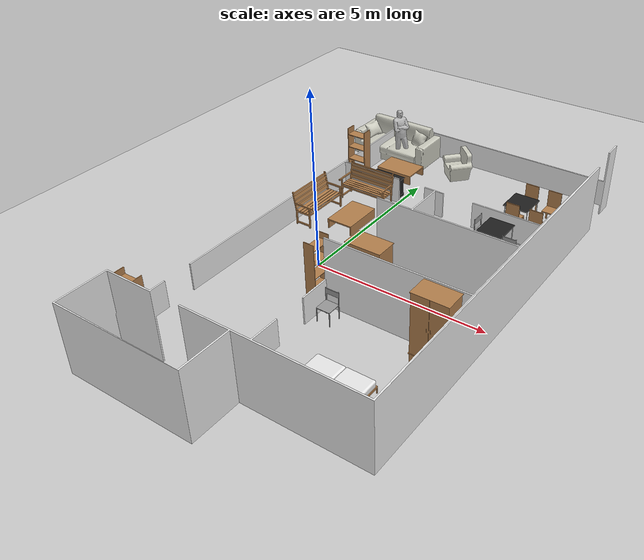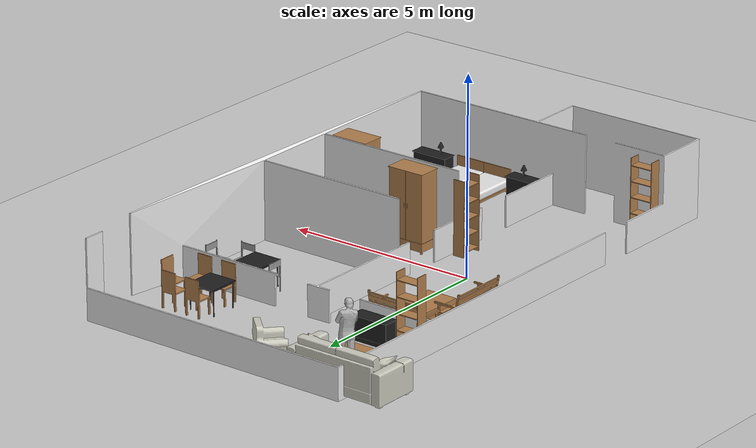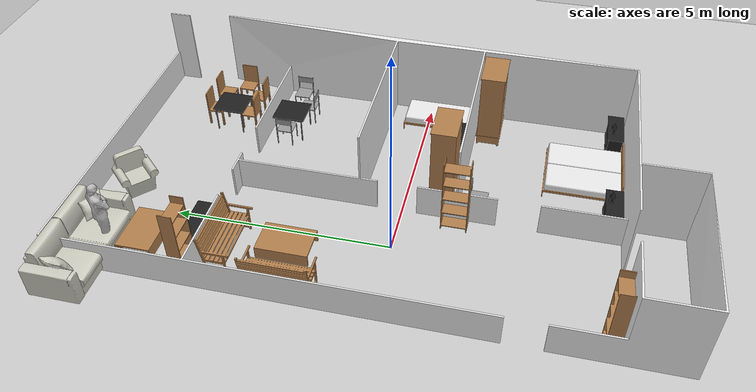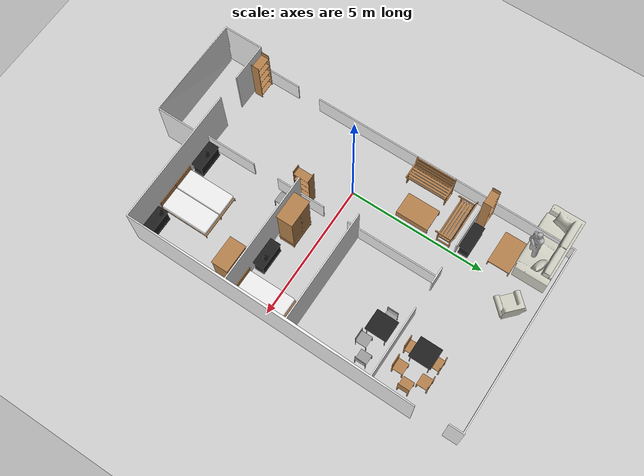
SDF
<sdf version="1.6">
 <world name="robocup">
  <physics name="default_physics" default="0" type="ode">
   <ode>
    <solver>
     <type>quick</type>
     <iters>20</iters>
     <sor>1</sor>
     <use_dynamic_moi_rescaling>0</use_dynamic_moi_rescaling>
    </solver>
    <constraints>
     <cfm>0</cfm>
     <erp>0.2</erp>
     <contact_max_correcting_vel>100</contact_max_correcting_vel>
     <contact_surface_layer>0</contact_surface_layer>
    </constraints>
   </ode>
   <real_time_update_rate>1000</real_time_update_rate>
   <max_step_size>0.001</max_step_size>
   <real_time_factor>1</real_time_factor>
  </physics>
  <light name="sun" type="directional">
   <pose>0 0 10 0 -0 0</pose>
   <diffuse>0.8 0.8 0.8 1</diffuse>
   <specular>0.1 0.1 0.1 1</specular>
   <attenuation>
    <range>1000</range>
    <constant>0.9</constant>
    <linear>0.01</linear>
    <quadratic>0.001</quadratic>
   </attenuation>
   <direction>-0.5 0.5 -1</direction>
  </light>
  <model name="ground_plane">
   <static>1</static>
   <link name="link">
    <collision name="collision">
     <geometry><plane><normal>0 0 1</normal><size>100 100</size></plane></geometry>
     <surface><friction><ode><mu>100</mu><mu2>50</mu2></ode></friction></surface>
    </collision>
    <visual name="visual">
     <cast_shadows>0</cast_shadows>
     <geometry><plane><normal>0 0 1</normal><size>100 100</size></plane></geometry>
     <material>
      <script><uri>file://media/materials/scripts/gazebo.material</uri><name>Gazebo/Grey</name></script>
     </material>
    </visual>
   </link>
  </model>
  <model name="housewalls1">
   <static>1</static>
   <link name="link">
    <collision name="colision1">
     <geometry>
      <mesh>
       <uri>model://robocup_walls_70cm_doors/meshes/robocup_house_large_doors_sas.stl</uri>
       <scale>1 1 1</scale>
      </mesh>
     </geometry>
    </collision>
    <visual name="visual1">
     <geometry>
      <mesh>
       <uri>model://robocup_walls_70cm_doors/meshes/robocup_house_large_doors_sas.stl</uri>
       <scale>1 1 1</scale>
      </mesh>
     </geometry>
     <material>
      <script><uri>file://media/materials/scripts/gazebo.material</uri><name>Gazebo/White</name></script>
     </material>
    </visual>
    <velocity_decay><linear>0</linear><angular>0</angular></velocity_decay>
   </link>
   <pose>-2 -5 0 0 -0 0</pose>
  </model>
  <include>
   <name>male03</name>
   <uri>model://citizen_extras_male_03</uri>
   <pose>-1.2 6.1 0.01 0 -0.025 0.982961</pose>
  </include>
  <model name="bed1">
   <static>1</static>
   <link name="link">
    <collision name="colision1">
     <geometry><mesh><uri>model://bed/meshes/bed_base.stl</uri><scale>1 1 1</scale></mesh></geometry>
    </collision>
    <visual name="visual1">
     <geometry><mesh><uri>model://bed/meshes/bed_base.stl</uri><scale>1 1 1</scale></mesh></geometry>
     <material>
      <script><uri>file://media/materials/scripts/gazebo.material</uri><name>Gazebo/WoodPallet</name></script>
     </material>
    </visual>
    <collision name="colision2">
     <pose>0 0 0.2 0 -0 0</pose>
     <geometry><mesh><uri>model://bed/meshes/bed_quilt.stl</uri><scale>1 1 1</scale></mesh></geometry>
    </collision>
    <visual name="visual2">
     <pose>0 0 0.2 0 -0 0</pose>
     <geometry><mesh><uri>model://bed/meshes/bed_quilt.stl</uri><scale>1 1 1</scale></mesh></geometry>
     <material>
      <script><uri>file://media/materials/scripts/gazebo.material</uri><name>Gazebo/White</name></script>
     </material>
    </visual>
    <velocity_decay><linear>0</linear><angular>0</angular></velocity_decay>
   </link>
   <pose>3.2 -4.9 0 0 -0 1.5708</pose>
  </model>
  <model name="bed2">
   <static>1</static>
   <link name="link">
    <collision name="colision1">
     <geometry><mesh><uri>model://bed/meshes/bed_base.stl</uri><scale>1 1 1</scale></mesh></geometry>
    </collision>
    <visual name="visual1">
     <geometry><mesh><uri>model://bed/meshes/bed_base.stl</uri><scale>1 1 1</scale></mesh></geometry>
     <material>
      <script><uri>file://media/materials/scripts/gazebo.material</uri><name>Gazebo/WoodPallet</name></script>
     </material>
    </visual>
    <collision name="colision2">
     <pose>0 0 0.2 0 -0 0</pose>
     <geometry><mesh><uri>model://bed/meshes/bed_quilt.stl</uri><scale>1 1 1</scale></mesh></geometry>
    </collision>
    <visual name="visual2">
     <pose>0 0 0.2 0 -0 0</pose>
     <geometry><mesh><uri>model://bed/meshes/bed_quilt.stl</uri><scale>1 1 1</scale></mesh></geometry>
     <material>
      <script><uri>file://media/materials/scripts/gazebo.material</uri><name>Gazebo/White</name></script>
     </material>
    </visual>
    <velocity_decay><linear>0</linear><angular>0</angular></velocity_decay>
   </link>
   <pose>4 -4.9 0 0 -0 1.5708</pose>
  </model>
  <model name="sideboard1">
   <static>1</static>
   <link name="link">
    <collision name="colision1">
     <geometry><mesh><uri>model://sideboard/meshes/sideboard.stl</uri><scale>1 1 1</scale></mesh></geometry>
    </collision>
    <visual name="visual1">
     <geometry><mesh><uri>model://sideboard/meshes/sideboard.stl</uri><scale>1 1 1</scale></mesh></geometry>
     <material>
      <script><uri>file://media/materials/scripts/gazebo.material</uri><name>Gazebo/FlatBlack</name></script>
     </material>
    </visual>
    <velocity_decay><linear>0</linear><angular>0</angular></velocity_decay>
   </link>
   <pose>1.3 -4.9 0 0 -0 0</pose>
  </model>
  <model name="sideboard2">
   <static>1</static>
   <link name="link">
    <collision name="colision1">
     <geometry><mesh><uri>model://sideboard/meshes/sideboard.stl</uri><scale>1 1 1</scale></mesh></geometry>
    </collision>
    <visual name="visual1">
     <geometry><mesh><uri>model://sideboard/meshes/sideboard.stl</uri><scale>1 1 1</scale></mesh></geometry>
     <material>
      <script><uri>file://media/materials/scripts/gazebo.material</uri><name>Gazebo/FlatBlack</name></script>
     </material>
    </visual>
    <velocity_decay><linear>0</linear><angular>0</angular></velocity_decay>
   </link>
   <pose>4.1 -4.9 0 0 -0 0</pose>
  </model>
  <model name="lamp1">
   <static>1</static>
   <link name="link">
    <collision name="colision1">
     <geometry><mesh><uri>model://lamp/meshes/lamp.stl</uri><scale>1 1 1</scale></mesh></geometry>
    </collision>
    <visual name="visual1">
     <geometry><mesh><uri>model://lamp/meshes/lamp.stl</uri><scale>1 1 1</scale></mesh></geometry>
     <material>
      <script><uri>file://media/materials/scripts/gazebo.material</uri><name>Gazebo/FlatBlack</name></script>
     </material>
    </visual>
    <velocity_decay><linear>0</linear><angular>0</angular></velocity_decay>
   </link>
   <pose>1.7 -4.7 0.7 0 -0 0</pose>
  </model>
  <model name="lamp2">
   <static>1</static>
   <link name="link">
    <collision name="colision1">
     <geometry><mesh><uri>model://lamp/meshes/lamp.stl</uri><scale>1 1 1</scale></mesh></geometry>
    </collision>
    <visual name="visual1">
     <geometry><mesh><uri>model://lamp/meshes/lamp.stl</uri><scale>1 1 1</scale></mesh></geometry>
     <material>
      <script><uri>file://media/materials/scripts/gazebo.material</uri><name>Gazebo/FlatBlack</name></script>
     </material>
    </visual>
    <velocity_decay><linear>0</linear><angular>0</angular></velocity_decay>
   </link>
   <pose>4.2 -4.7 0.7 0 -0 0</pose>
  </model>
  <model name="wardrobe1">
   <static>1</static>
   <link name="link">
    <collision name="colision1">
     <geometry><mesh><uri>model://wardrobe/meshes/wardrobe.stl</uri><scale>1 1 1</scale></mesh></geometry>
    </collision>
    <visual name="visual1">
     <geometry><mesh><uri>model://wardrobe/meshes/wardrobe.stl</uri><scale>1 1 1</scale></mesh></geometry>
     <material>
      <script><uri>file://media/materials/scripts/gazebo.material</uri><name>Gazebo/WoodPallet</name></script>
     </material>
    </visual>
    <velocity_decay><linear>0</linear><angular>0</angular></velocity_decay>
   </link>
   <pose>4 -1.9 0 0 -0 0</pose>
  </model>
  <model name="kitchen_chair1">
   <static>1</static>
   <link name="link">
    <collision name="colision1">
     <geometry>
      <mesh><uri>model://kitchen_chair/meshes/kitchen_chair.stl</uri><scale>1 1 1</scale></mesh>
     </geometry>
    </collision>
    <visual name="visual1">
     <geometry>
      <mesh><uri>model://kitchen_chair/meshes/kitchen_chair.stl</uri><scale>1 1 1</scale></mesh>
     </geometry>
     <material>
      <script><uri>file://media/materials/scripts/gazebo.material</uri><name>Gazebo/Grey</name></script>
     </material>
    </visual>
    <velocity_decay><linear>0</linear><angular>0</angular></velocity_decay>
   </link>
   <pose>1.4 -1.5 0 0 0 -1.5708</pose>
  </model>
  <model name="bed3">
   <static>1</static>
   <link name="link">
    <collision name="colision1">
     <geometry><mesh><uri>model://bed/meshes/bed_base.stl</uri><scale>1 1 1</scale></mesh></geometry>
    </collision>
    <visual name="visual1">
     <geometry><mesh><uri>model://bed/meshes/bed_base.stl</uri><scale>1 1 1</scale></mesh></geometry>
     <material>
      <script><uri>file://media/materials/scripts/gazebo.material</uri><name>Gazebo/WoodPallet</name></script>
     </material>
    </visual>
    <collision name="colision2">
     <pose>0 0 0.2 0 -0 0</pose>
     <geometry><mesh><uri>model://bed/meshes/bed_quilt.stl</uri><scale>1 1 1</scale></mesh></geometry>
    </collision>
    <visual name="visual2">
     <pose>0 0 0.2 0 -0 0</pose>
     <geometry><mesh><uri>model://bed/meshes/bed_quilt.stl</uri><scale>1 1 1</scale></mesh></geometry>
     <material>
      <script><uri>file://media/materials/scripts/gazebo.material</uri><name>Gazebo/White</name></script>
     </material>
    </visual>
    <velocity_decay><linear>0</linear><angular>0</angular></velocity_decay>
   </link>
   <pose>5 -1.2 0 0 -0 1.5708</pose>
  </model>
  <model name="sideboard3">
   <static>1</static>
   <link name="link">
    <collision name="colision1">
     <geometry><mesh><uri>model://sideboard/meshes/sideboard.stl</uri><scale>1 1 1</scale></mesh></geometry>
    </collision>
    <visual name="visual1">
     <geometry><mesh><uri>model://sideboard/meshes/sideboard.stl</uri><scale>1 1 1</scale></mesh></geometry>
     <material>
      <script><uri>file://media/materials/scripts/gazebo.material</uri><name>Gazebo/FlatBlack</name></script>
     </material>
    </visual>
    <velocity_decay><linear>0</linear><angular>0</angular></velocity_decay>
   </link>
   <pose>3 -1.2 0 0 -0 0</pose>
  </model>
  <model name="lamp3">
   <static>1</static>
   <link name="link">
    <collision name="colision1">
     <geometry><mesh><uri>model://lamp/meshes/lamp.stl</uri><scale>1 1 1</scale></mesh></geometry>
    </collision>
    <visual name="visual1">
     <geometry><mesh><uri>model://lamp/meshes/lamp.stl</uri><scale>1 1 1</scale></mesh></geometry>
     <material>
      <script><uri>file://media/materials/scripts/gazebo.material</uri><name>Gazebo/FlatBlack</name></script>
     </material>
    </visual>
    <velocity_decay><linear>0</linear><angular>0</angular></velocity_decay>
   </link>
   <pose>3.6 -1 0.7 0 -0 0</pose>
  </model>
  <model name="wardrobe2">
   <static>1</static>
   <link name="link">
    <collision name="colision1">
     <geometry><mesh><uri>model://wardrobe/meshes/wardrobe.stl</uri><scale>1 1 1</scale></mesh></geometry>
    </collision>
    <visual name="visual1">
     <geometry><mesh><uri>model://wardrobe/meshes/wardrobe.stl</uri><scale>1 1 1</scale></mesh></geometry>
     <material>
      <script><uri>file://media/materials/scripts/gazebo.material</uri><name>Gazebo/WoodPallet</name></script>
     </material>
    </visual>
    <velocity_decay><linear>0</linear><angular>0</angular></velocity_decay>
   </link>
   <pose>2.7 -0.5 0 0 0 -3.14159</pose>
  </model>
  <model name="closet1">
   <static>1</static>
   <link name="link">
    <collision name="colision1">
     <geometry><mesh><uri>model://closet/meshes/closet.stl</uri><scale>1 1 1</scale></mesh></geometry>
    </collision>
    <visual name="visual1">
     <geometry><mesh><uri>model://closet/meshes/closet.stl</uri><scale>1 1 1</scale></mesh></geometry>
     <material>
      <script><uri>file://media/materials/scripts/gazebo.material</uri><name>Gazebo/WoodFloor</name></script>
     </material>
    </visual>
    <velocity_decay><linear>0</linear><angular>0</angular></velocity_decay>
   </link>
   <pose>-1.9 -4.9 0 0 -0 0</pose>
  </model>
  <model name="closet2">
   <static>1</static>
   <link name="link">
    <collision name="colision1">
     <geometry><mesh><uri>model://closet/meshes/closet.stl</uri><scale>1 1 1</scale></mesh></geometry>
    </collision>
    <visual name="visual1">
     <geometry><mesh><uri>model://closet/meshes/closet.stl</uri><scale>1 1 1</scale></mesh></geometry>
     <material>
      <script><uri>file://media/materials/scripts/gazebo.material</uri><name>Gazebo/WoodFloor</name></script>
     </material>
    </visual>
    <velocity_decay><linear>0</linear><angular>0</angular></velocity_decay>
   </link>
   <pose>1.12312 -1.54909 0 0 -0 1.5708</pose>
  </model>
  <model name="bench1">
   <static>1</static>
   <link name="link">
    <collision name="colision1">
     <geometry><mesh><uri>model://bench/meshes/bench.stl</uri><scale>1 1 1</scale></mesh></geometry>
    </collision>
    <visual name="visual1">
     <geometry><mesh><uri>model://bench/meshes/bench.stl</uri><scale>1 1 1</scale></mesh></geometry>
     <material>
      <script><uri>file://media/materials/scripts/gazebo.material</uri><name>Gazebo/Wood</name></script>
     </material>
    </visual>
    <velocity_decay><linear>0</linear><angular>0</angular></velocity_decay>
   </link>
   <pose>-1.9 1.3 0 0 -0 0</pose>
  </model>
  <model name="bench2">
   <static>1</static>
   <link name="link">
    <collision name="colision1">
     <geometry><mesh><uri>model://bench/meshes/bench.stl</uri><scale>1 1 1</scale></mesh></geometry>
    </collision>
    <visual name="visual1">
     <geometry><mesh><uri>model://bench/meshes/bench.stl</uri><scale>1 1 1</scale></mesh></geometry>
     <material>
      <script><uri>file://media/materials/scripts/gazebo.material</uri><name>Gazebo/Wood</name></script>
     </material>
    </visual>
    <velocity_decay><linear>0</linear><angular>0</angular></velocity_decay>
   </link>
   <pose>-1.6 3.8 0 0 0 -1.5708</pose>
  </model>
  <model name="reviews_table1">
   <static>1</static>
   <link name="link">
    <collision name="colision1">
     <geometry>
      <mesh><uri>model://reviews_table/meshes/reviews_table.stl</uri><scale>1 1 1</scale></mesh>
     </geometry>
    </collision>
    <visual name="visual1">
     <geometry>
      <mesh><uri>model://reviews_table/meshes/reviews_table.stl</uri><scale>1 1 1</scale></mesh>
     </geometry>
     <material>
      <script><uri>file://media/materials/scripts/gazebo.material</uri><name>Gazebo/WoodFloor</name></script>
     </material>
    </visual>
    <velocity_decay><linear>0</linear><angular>0</angular></velocity_decay>
   </link>
   <pose>-0.920769 1.62708 0 0 -0 0</pose>
  </model>
  <model name="sideboard4">
   <static>1</static>
   <link name="link">
    <collision name="colision1">
     <geometry><mesh><uri>model://sideboard/meshes/sideboard.stl</uri><scale>1 1 1</scale></mesh></geometry>
    </collision>
    <visual name="visual1">
     <geometry><mesh><uri>model://sideboard/meshes/sideboard.stl</uri><scale>1 1 1</scale></mesh></geometry>
     <material>
      <script><uri>file://media/materials/scripts/gazebo.material</uri><name>Gazebo/FlatBlack</name></script>
     </material>
    </visual>
    <velocity_decay><linear>0</linear><angular>0</angular></velocity_decay>
   </link>
   <pose>-1.1 4 0 0 -0 0</pose>
  </model>
  <model name="closet3">
   <static>1</static>
   <link name="link">
    <collision name="colision1">
     <geometry><mesh><uri>model://closet/meshes/closet.stl</uri><scale>1 1 1</scale></mesh></geometry>
    </collision>
    <visual name="visual1">
     <geometry><mesh><uri>model://closet/meshes/closet.stl</uri><scale>1 1 1</scale></mesh></geometry>
     <material>
      <script><uri>file://media/materials/scripts/gazebo.material</uri><name>Gazebo/WoodFloor</name></script>
     </material>
    </visual>
    <velocity_decay><linear>0</linear><angular>0</angular></velocity_decay>
   </link>
   <pose>-1.9 4 0 0 -0 0</pose>
  </model>
  <model name="sofa1">
   <static>1</static>
   <link name="link">
    <collision name="colision1">
     <geometry><mesh><uri>model://sofa/meshes/sofa.stl</uri><scale>1 1 1</scale></mesh></geometry>
    </collision>
    <visual name="visual1">
     <geometry><mesh><uri>model://sofa/meshes/sofa.stl</uri><scale>1 1 1</scale></mesh></geometry>
     <material>
      <script><uri>file://media/materials/scripts/gazebo.material</uri><name>Gazebo/PaintedWall</name></script>
     </material>
    </visual>
    <velocity_decay><linear>0</linear><angular>0</angular></velocity_decay>
   </link>
   <pose>-1.7 6.4 0 0 -0 0</pose>
  </model>
  <model name="reviews_table2">
   <static>1</static>
   <link name="link">
    <collision name="colision1">
     <geometry>
      <mesh><uri>model://reviews_table/meshes/reviews_table.stl</uri><scale>1 1 1</scale></mesh>
     </geometry>
    </collision>
    <visual name="visual1">
     <geometry>
      <mesh><uri>model://reviews_table/meshes/reviews_table.stl</uri><scale>1 1 1</scale></mesh>
     </geometry>
     <material>
      <script><uri>file://media/materials/scripts/gazebo.material</uri><name>Gazebo/WoodFloor</name></script>
     </material>
    </visual>
    <velocity_decay><linear>0</linear><angular>0</angular></velocity_decay>
   </link>
   <pose>-1.5 5.8 0 0 0 -1.5708</pose>
  </model>
  <model name="arm_chair1">
   <static>1</static>
   <link name="link">
    <collision name="colision1">
     <geometry><mesh><uri>model://arm_chair/meshes/arm_chair.stl</uri><scale>1 1 1</scale></mesh></geometry>
    </collision>
    <visual name="visual1">
     <geometry><mesh><uri>model://arm_chair/meshes/arm_chair.stl</uri><scale>1 1 1</scale></mesh></geometry>
     <material>
      <script><uri>file://media/materials/scripts/gazebo.material</uri><name>Gazebo/PaintedWall</name></script>
     </material>
    </visual>
    <velocity_decay><linear>0</linear><angular>0</angular></velocity_decay>
   </link>
   <pose>0.2 6.3 0 0 0 -0.747481</pose>
  </model>
  <model name="kitchen_table1">
   <static>1</static>
   <link name="link">
    <collision name="colision1">
     <geometry>
      <mesh><uri>model://kitchen_table/meshes/kitchen_table.stl</uri><scale>1 1 1</scale></mesh>
     </geometry>
    </collision>
    <visual name="visual1">
     <geometry>
      <mesh><uri>model://kitchen_table/meshes/kitchen_table.stl</uri><scale>1 1 1</scale></mesh>
     </geometry>
     <material>
      <script><uri>file://media/materials/scripts/gazebo.material</uri><name>Gazebo/FlatBlack</name></script>
     </material>
    </visual>
    <velocity_decay><linear>0</linear><angular>0</angular></velocity_decay>
   </link>
   <pose>3.1 5.35 0 0 0 -1.5748</pose>
  </model>
  <model name="dinning_chair1">
   <static>1</static>
   <link name="link">
    <collision name="colision1">
     <geometry><mesh><uri>model://dining_chair/meshes/dining_chair.stl</uri><scale>1 1 1</scale></mesh></geometry>
    </collision>
    <visual name="visual1">
     <geometry><mesh><uri>model://dining_chair/meshes/dining_chair.stl</uri><scale>1 1 1</scale></mesh></geometry>
     <material>
      <script><uri>file://media/materials/scripts/gazebo.material</uri><name>Gazebo/Wood</name></script>
     </material>
    </visual>
    <velocity_decay><linear>0</linear><angular>0</angular></velocity_decay>
   </link>
   <pose>3.3 4.3 0 0 -0 0</pose>
  </model>
  <model name="dinning_chair2">
   <static>1</static>
   <link name="link">
    <collision name="colision1">
     <geometry><mesh><uri>model://dining_chair/meshes/dining_chair.stl</uri><scale>1 1 1</scale></mesh></geometry>
    </collision>
    <visual name="visual1">
     <geometry><mesh><uri>model://dining_chair/meshes/dining_chair.stl</uri><scale>1 1 1</scale></mesh></geometry>
     <material>
      <script><uri>file://media/materials/scripts/gazebo.material</uri><name>Gazebo/Wood</name></script>
     </material>
    </visual>
    <velocity_decay><linear>0</linear><angular>0</angular></velocity_decay>
   </link>
   <pose>4 4.3 0 0 -0 0</pose>
  </model>
  <model name="dinning_chair3">
   <static>1</static>
   <link name="link">
    <collision name="colision1">
     <geometry><mesh><uri>model://dining_chair/meshes/dining_chair.stl</uri><scale>1 1 1</scale></mesh></geometry>
    </collision>
    <visual name="visual1">
     <geometry><mesh><uri>model://dining_chair/meshes/dining_chair.stl</uri><scale>1 1 1</scale></mesh></geometry>
     <material>
      <script><uri>file://media/materials/scripts/gazebo.material</uri><name>Gazebo/Wood</name></script>
     </material>
    </visual>
    <velocity_decay><linear>0</linear><angular>0</angular></velocity_decay>
   </link>
   <pose>4.8 4.75 0 0 -0 1.5748</pose>
  </model>
  <model name="dinning_chair4">
   <static>1</static>
   <link name="link">
    <collision name="colision1">
     <geometry><mesh><uri>model://dining_chair/meshes/dining_chair.stl</uri><scale>1 1 1</scale></mesh></geometry>
    </collision>
    <visual name="visual1">
     <geometry><mesh><uri>model://dining_chair/meshes/dining_chair.stl</uri><scale>1 1 1</scale></mesh></geometry>
     <material>
      <script><uri>file://media/materials/scripts/gazebo.material</uri><name>Gazebo/Wood</name></script>
     </material>
    </visual>
    <velocity_decay><linear>0</linear><angular>0</angular></velocity_decay>
   </link>
   <pose>4.4 5.6 0 0 0 -3.14159</pose>
  </model>
  <model name="dinning_chair5">
   <static>1</static>
   <link name="link">
    <collision name="colision1">
     <geometry><mesh><uri>model://dining_chair/meshes/dining_chair.stl</uri><scale>1 1 1</scale></mesh></geometry>
    </collision>
    <visual name="visual1">
     <geometry><mesh><uri>model://dining_chair/meshes/dining_chair.stl</uri><scale>1 1 1</scale></mesh></geometry>
     <material>
      <script><uri>file://media/materials/scripts/gazebo.material</uri><name>Gazebo/Wood</name></script>
     </material>
    </visual>
    <velocity_decay><linear>0</linear><angular>0</angular></velocity_decay>
   </link>
   <pose>3.7 5.6 0 0 0 -3.14159</pose>
  </model>
  <model name="kitchen_table2">
   <static>1</static>
   <link name="link">
    <collision name="colision1">
     <geometry>
      <mesh><uri>model://kitchen_table/meshes/kitchen_table.stl</uri><scale>1 1 1</scale></mesh>
     </geometry>
    </collision>
    <visual name="visual1">
     <geometry>
      <mesh><uri>model://kitchen_table/meshes/kitchen_table.stl</uri><scale>1 1 1</scale></mesh>
     </geometry>
     <material>
      <script><uri>file://media/materials/scripts/gazebo.material</uri><name>Gazebo/FlatBlack</name></script>
     </material>
    </visual>
    <velocity_decay><linear>0</linear><angular>0</angular></velocity_decay>
   </link>
   <pose>3.10838 3.75597 0 0 0 -1.5748</pose>
  </model>
  <model name="kitchen_chair2">
   <static>1</static>
   <link name="link">
    <collision name="colision1">
     <geometry>
      <mesh><uri>model://kitchen_chair/meshes/kitchen_chair.stl</uri><scale>1 1 1</scale></mesh>
     </geometry>
    </collision>
    <visual name="visual1">
     <geometry>
      <mesh><uri>model://kitchen_chair/meshes/kitchen_chair.stl</uri><scale>1 1 1</scale></mesh>
     </geometry>
     <material>
      <script><uri>file://media/materials/scripts/gazebo.material</uri><name>Gazebo/Grey</name></script>
     </material>
    </visual>
    <velocity_decay><linear>0</linear><angular>0</angular></velocity_decay>
   </link>
   <pose>4.8 3.6 0 0 0 -3.14159</pose>
  </model>
  <model name="kitchen_chair3">
   <static>1</static>
   <link name="link">
    <collision name="colision1">
     <geometry>
      <mesh><uri>model://kitchen_chair/meshes/kitchen_chair.stl</uri><scale>1 1 1</scale></mesh>
     </geometry>
    </collision>
    <visual name="visual1">
     <geometry>
      <mesh><uri>model://kitchen_chair/meshes/kitchen_chair.stl</uri><scale>1 1 1</scale></mesh>
     </geometry>
     <material>
      <script><uri>file://media/materials/scripts/gazebo.material</uri><name>Gazebo/Grey</name></script>
     </material>
    </visual>
    <velocity_decay><linear>0</linear><angular>0</angular></velocity_decay>
   </link>
   <pose>2.9 3.2 0 0 -0 0</pose>
  </model>
  <model name="kitchen_chair4">
   <static>1</static>
   <link name="link">
    <collision name="colision1">
     <geometry>
      <mesh><uri>model://kitchen_chair/meshes/kitchen_chair.stl</uri><scale>1 1 1</scale></mesh>
     </geometry>
    </collision>
    <visual name="visual1">
     <geometry>
      <mesh><uri>model://kitchen_chair/meshes/kitchen_chair.stl</uri><scale>1 1 1</scale></mesh>
     </geometry>
     <material>
      <script><uri>file://media/materials/scripts/gazebo.material</uri><name>Gazebo/Grey</name></script>
     </material>
    </visual>
    <velocity_decay><linear>0</linear><angular>0</angular></velocity_decay>
   </link>
   <pose>4.3 2.9 0 0 -0 1.5708</pose>
  </model>
  <gravity>0 0 -9.81</gravity>
  <magnetic_field>6e-06 2.3e-05 -4.2e-05</magnetic_field>
  <atmosphere type="adiabatic"/>
  <scene><ambient>0.4 0.4 0.4 1</ambient><background>0.7 0.7 0.7 1</background><shadows>1</shadows></scene>
  <spherical_coordinates>
   <surface_model>EARTH_WGS84</surface_model>
   <latitude_deg>0</latitude_deg>
   <longitude_deg>0</longitude_deg>
   <elevation>0</elevation>
   <heading_deg>0</heading_deg>
  </spherical_coordinates>
 </world>
</sdf>

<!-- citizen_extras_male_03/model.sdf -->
<sdf version="1.4">

 <model name="citizen_extras_male_03">

    <link name="link">

     <inertial>

       <mass>20</mass>

       <inertia>

         <ixx>0.0</ixx>

         <ixy>0.0</ixy>

         <ixz>0.0</ixz>

         <iyy>0.0</iyy>

         <iyz>0.0</iyz>

         <izz>0.0</izz>

       </inertia>

     </inertial>

     <collision name="collision">

       <pose>0 0 0 0 0 0</pose>

       <geometry>

         <mesh>

           <uri>model://citizen_extras_male_03/meshes/mesh.dae</uri>

         </mesh>

       </geometry>

     </collision>

     <visual name="visual">

       <pose>0 0 0 0 0 0</pose>

       <geometry>

         <mesh>

           <uri>model://citizen_extras_male_03/meshes/mesh.dae</uri>

         </mesh>

       </geometry>

     </visual>

    </link>

 </model>
</sdf>
